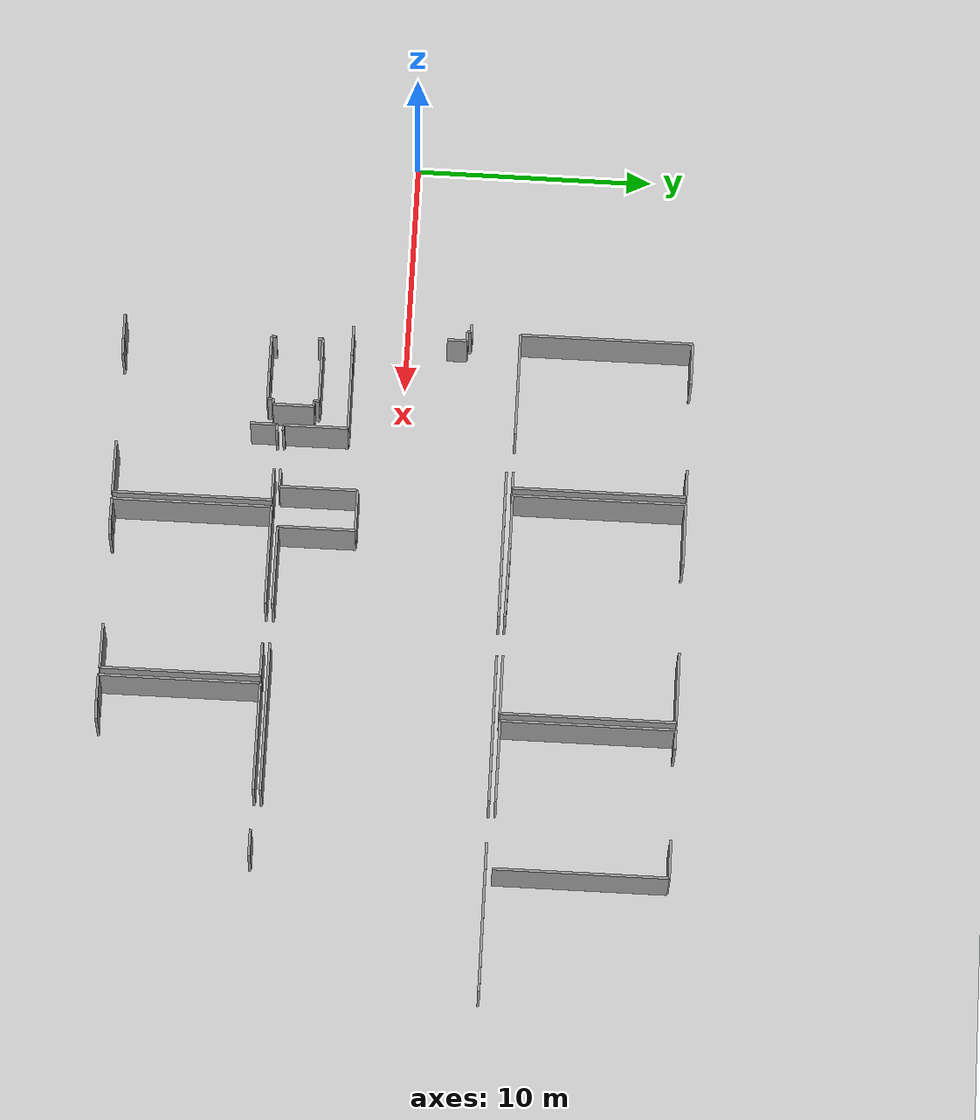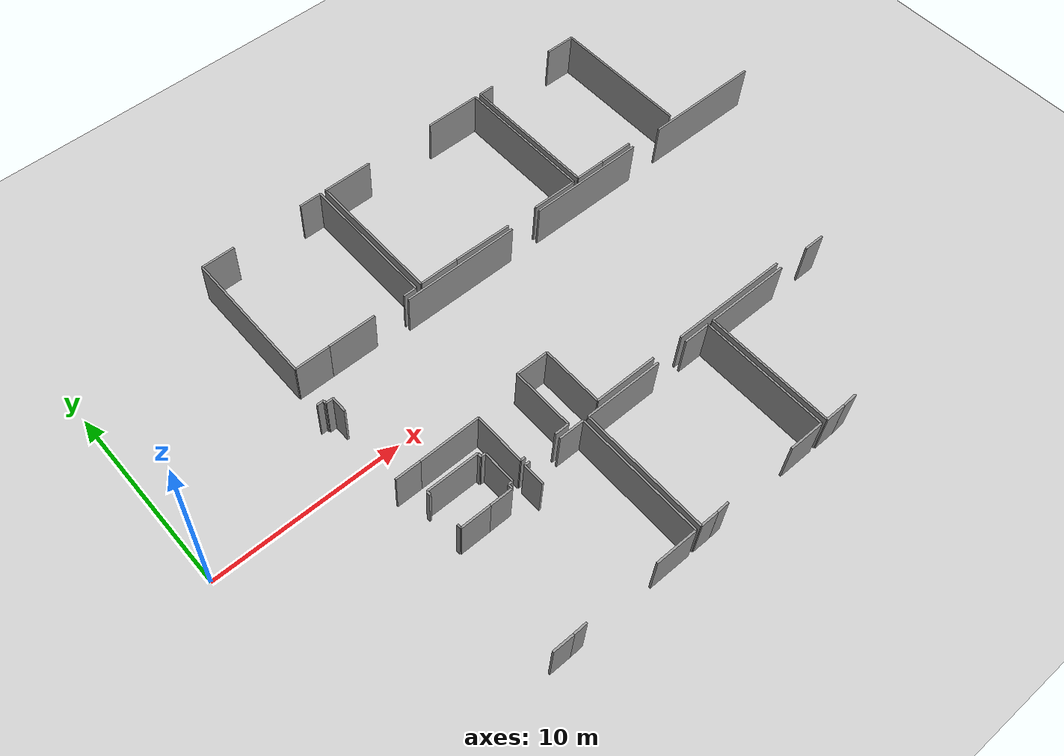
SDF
<sdf version="1.6">
 <world name="default">
  <model name="ground_plane">
   <static>1</static>
   <link name="link">
    <collision name="collision">
     <geometry><plane><normal>0 0 1</normal><size>100 100</size></plane></geometry>
     <surface><friction><ode><mu>100</mu><mu2>50</mu2></ode></friction></surface>
    </collision>
    <visual name="visual">
     <cast_shadows>0</cast_shadows>
     <geometry><plane><normal>0 0 1</normal><size>100 100</size></plane></geometry>
     <material>
      <script><uri>file://media/materials/scripts/gazebo.material</uri><name>Gazebo/Grey</name></script>
     </material>
    </visual>
   </link>
  </model>
  <model name="0510034690_Layout1">
   <static>1</static>
   <link name="Wall_187">
    <collision name="Wall_187_Collision">
     <geometry><box><size>1.58308535551 0.1 2.5</size></box></geometry>
     <pose>0.791542677755 0 1.25 0 0 0</pose>
    </collision>
    <visual name="Wall_187_Visual">
     <pose>0.791542677755 0 1.25 0 0 0</pose>
     <geometry><box><size>1.58308535551 0.1 2.5</size></box></geometry>
     <material>
      <script><uri>file://media/materials/scripts/gazebo.material</uri><name>Gazebo/Grey</name></script>
      <ambient>1 1 1 1</ambient>
     </material>
    </visual>
    <pose>66.4458427844 -18.4627361284 0 0 0 3.14159265359</pose>
   </link>
   <link name="Wall_188">
    <collision name="Wall_188_Collision">
     <geometry><box><size>0.218203579756 0.1 2.5</size></box></geometry>
     <pose>0.109101789878 0 1.25 0 0 0</pose>
    </collision>
    <visual name="Wall_188_Visual">
     <pose>0.109101789878 0 1.25 0 0 0</pose>
     <geometry><box><size>0.218203579756 0.1 2.5</size></box></geometry>
     <material>
      <script><uri>file://media/materials/scripts/gazebo.material</uri><name>Gazebo/Grey</name></script>
      <ambient>1 1 1 1</ambient>
     </material>
    </visual>
    <pose>64.8627574289 -18.4627361284 0 0 0 1.57079632679</pose>
   </link>
   <link name="Wall_189">
    <collision name="Wall_189_Collision">
     <geometry><box><size>0.210849827504 0.1 2.5</size></box></geometry>
     <pose>0.105424913752 0 1.25 0 0 0</pose>
    </collision>
    <visual name="Wall_189_Visual">
     <pose>0.105424913752 0 1.25 0 0 0</pose>
     <geometry><box><size>0.210849827504 0.1 2.5</size></box></geometry>
     <material>
      <script><uri>file://media/materials/scripts/gazebo.material</uri><name>Gazebo/Grey</name></script>
      <ambient>1 1 1 1</ambient>
     </material>
    </visual>
    <pose>64.8627574289 -16.5093005948 0 0 0 1.57079632679</pose>
   </link>
   <link name="Wall_190">
    <collision name="Wall_190_Collision">
     <geometry><box><size>2.76108039299 0.1 2.5</size></box></geometry>
     <pose>1.3805401965 0 1.25 0 0 0</pose>
    </collision>
    <visual name="Wall_190_Visual">
     <pose>1.3805401965 0 1.25 0 0 0</pose>
     <geometry><box><size>2.76108039299 0.1 2.5</size></box></geometry>
     <material>
      <script><uri>file://media/materials/scripts/gazebo.material</uri><name>Gazebo/Grey</name></script>
      <ambient>1 1 1 1</ambient>
     </material>
    </visual>
    <pose>64.8627574289 -16.2984507673 0 0 0 0.0</pose>
   </link>
   <link name="Wall_191">
    <collision name="Wall_191_Collision">
     <geometry><box><size>0.210849827504 0.1 2.5</size></box></geometry>
     <pose>0.105424913752 0 1.25 0 0 0</pose>
    </collision>
    <visual name="Wall_191_Visual">
     <pose>0.105424913752 0 1.25 0 0 0</pose>
     <geometry><box><size>0.210849827504 0.1 2.5</size></box></geometry>
     <material>
      <script><uri>file://media/materials/scripts/gazebo.material</uri><name>Gazebo/Grey</name></script>
      <ambient>1 1 1 1</ambient>
     </material>
    </visual>
    <pose>67.6238378219 -16.2984507673 0 0 0 -1.57079632679</pose>
   </link>
   <link name="Wall_192">
    <collision name="Wall_192_Collision">
     <geometry><box><size>0.249266843579 0.1 2.5</size></box></geometry>
     <pose>0.12463342179 0 1.25 0 0 0</pose>
    </collision>
    <visual name="Wall_192_Visual">
     <pose>0.12463342179 0 1.25 0 0 0</pose>
     <geometry><box><size>0.249266843579 0.1 2.5</size></box></geometry>
     <material>
      <script><uri>file://media/materials/scripts/gazebo.material</uri><name>Gazebo/Grey</name></script>
      <ambient>1 1 1 1</ambient>
     </material>
    </visual>
    <pose>67.6238378219 -16.5093005948 0 0 0 0.0</pose>
   </link>
   <link name="Wall_193">
    <collision name="Wall_193_Collision">
     <geometry><box><size>1.71608684021 0.1 2.5</size></box></geometry>
     <pose>0.858043420103 0 1.25 0 0 0</pose>
    </collision>
    <visual name="Wall_193_Visual">
     <pose>0.858043420103 0 1.25 0 0 0</pose>
     <geometry><box><size>1.71608684021 0.1 2.5</size></box></geometry>
     <material>
      <script><uri>file://media/materials/scripts/gazebo.material</uri><name>Gazebo/Grey</name></script>
      <ambient>1 1 1 1</ambient>
     </material>
    </visual>
    <pose>67.8731046654 -16.5093005948 0 0 0 -1.57079632679</pose>
   </link>
   <link name="Wall_194">
    <collision name="Wall_194_Collision">
     <geometry><box><size>0.229994941126 0.1 2.5</size></box></geometry>
     <pose>0.114997470563 0 1.25 0 0 0</pose>
    </collision>
    <visual name="Wall_194_Visual">
     <pose>0.114997470563 0 1.25 0 0 0</pose>
     <geometry><box><size>0.229994941126 0.1 2.5</size></box></geometry>
     <material>
      <script><uri>file://media/materials/scripts/gazebo.material</uri><name>Gazebo/Grey</name></script>
      <ambient>1 1 1 1</ambient>
     </material>
    </visual>
    <pose>67.8731046654 -18.225387435 0 0 0 3.14159265359</pose>
   </link>
   <link name="Wall_195">
    <collision name="Wall_195_Collision">
     <geometry><box><size>0.230121729958 0.1 2.5</size></box></geometry>
     <pose>0.115060864979 0 1.25 0 0 0</pose>
    </collision>
    <visual name="Wall_195_Visual">
     <pose>0.115060864979 0 1.25 0 0 0</pose>
     <geometry><box><size>0.230121729958 0.1 2.5</size></box></geometry>
     <material>
      <script><uri>file://media/materials/scripts/gazebo.material</uri><name>Gazebo/Grey</name></script>
      <ambient>1 1 1 1</ambient>
     </material>
    </visual>
    <pose>67.6431097243 -18.225387435 0 0 0 -1.57079632679</pose>
   </link>
   <link name="Wall_196">
    <collision name="Wall_196_Collision">
     <geometry><box><size>1.1972887515 0.1 2.5</size></box></geometry>
     <pose>0.598644375751 0 1.25 0 0 0</pose>
    </collision>
    <visual name="Wall_196_Visual">
     <pose>0.598644375751 0 1.25 0 0 0</pose>
     <geometry><box><size>1.1972887515 0.1 2.5</size></box></geometry>
     <material>
      <script><uri>file://media/materials/scripts/gazebo.material</uri><name>Gazebo/Grey</name></script>
      <ambient>1 1 1 1</ambient>
     </material>
    </visual>
    <pose>67.6431097243 -18.4555091649 0 0 0 -3.1355565096</pose>
   </link>
   <link name="Wall_197">
    <collision name="Wall_197_Collision">
     <geometry><box><size>1.32684512617 0.1 2.5</size></box></geometry>
     <pose>0.663422563087 0 1.25 0 0 0</pose>
    </collision>
    <visual name="Wall_197_Visual">
     <pose>0.663422563087 0 1.25 0 0 0</pose>
     <geometry><box><size>1.32684512617 0.1 2.5</size></box></geometry>
     <material>
      <script><uri>file://media/materials/scripts/gazebo.material</uri><name>Gazebo/Grey</name></script>
      <ambient>1 1 1 1</ambient>
     </material>
    </visual>
    <pose>65.527257697 -15.0362679454 0 0 0 3.14159265359</pose>
   </link>
   <link name="Wall_205">
    <collision name="Wall_205_Collision">
     <geometry><box><size>0.833256203461 0.1 2.5</size></box></geometry>
     <pose>0.41662810173 0 1.25 0 0 0</pose>
    </collision>
    <visual name="Wall_205_Visual">
     <pose>0.41662810173 0 1.25 0 0 0</pose>
     <geometry><box><size>0.833256203461 0.1 2.5</size></box></geometry>
     <material>
      <script><uri>file://media/materials/scripts/gazebo.material</uri><name>Gazebo/Grey</name></script>
      <ambient>1 1 1 1</ambient>
     </material>
    </visual>
    <pose>64.5943454717 -11.0831189546 0 0 0 1.57079632679</pose>
   </link>
   <link name="Wall_206">
    <collision name="Wall_206_Collision">
     <geometry><box><size>0.387973825714 0.1 2.5</size></box></geometry>
     <pose>0.193986912857 0 1.25 0 0 0</pose>
    </collision>
    <visual name="Wall_206_Visual">
     <pose>0.193986912857 0 1.25 0 0 0</pose>
     <geometry><box><size>0.387973825714 0.1 2.5</size></box></geometry>
     <material>
      <script><uri>file://media/materials/scripts/gazebo.material</uri><name>Gazebo/Grey</name></script>
      <ambient>1 1 1 1</ambient>
     </material>
    </visual>
    <pose>64.5943454717 -10.2498627511 0 0 0 3.14159265359</pose>
   </link>
   <link name="Wall_207">
    <collision name="Wall_207_Collision">
     <geometry><box><size>0.166727313991 0.1 2.5</size></box></geometry>
     <pose>0.0833636569956 0 1.25 0 0 0</pose>
    </collision>
    <visual name="Wall_207_Visual">
     <pose>0.0833636569956 0 1.25 0 0 0</pose>
     <geometry><box><size>0.166727313991 0.1 2.5</size></box></geometry>
     <material>
      <script><uri>file://media/materials/scripts/gazebo.material</uri><name>Gazebo/Grey</name></script>
      <ambient>1 1 1 1</ambient>
     </material>
    </visual>
    <pose>64.206371646 -10.2498627511 0 0 0 1.57079632679</pose>
   </link>
   <link name="Wall_208">
    <collision name="Wall_208_Collision">
     <geometry><box><size>0.358558816705 0.1 2.5</size></box></geometry>
     <pose>0.179279408353 0 1.25 0 0 0</pose>
    </collision>
    <visual name="Wall_208_Visual">
     <pose>0.179279408353 0 1.25 0 0 0</pose>
     <geometry><box><size>0.358558816705 0.1 2.5</size></box></geometry>
     <material>
      <script><uri>file://media/materials/scripts/gazebo.material</uri><name>Gazebo/Grey</name></script>
      <ambient>1 1 1 1</ambient>
     </material>
    </visual>
    <pose>64.206371646 -10.0831354371 0 0 0 3.14159265359</pose>
   </link>
   <link name="Wall_212">
    <collision name="Wall_212_Collision">
     <geometry><box><size>6.30622292266 0.1 2.5</size></box></geometry>
     <pose>3.15311146133 0 1.25 0 0 0</pose>
    </collision>
    <visual name="Wall_212_Visual">
     <pose>3.15311146133 0 1.25 0 0 0</pose>
     <geometry><box><size>6.30622292266 0.1 2.5</size></box></geometry>
     <material>
      <script><uri>file://media/materials/scripts/gazebo.material</uri><name>Gazebo/Grey</name></script>
      <ambient>1 1 1 1</ambient>
     </material>
    </visual>
    <pose>70.3466279876 -8.2999773048 0 0 0 0.0</pose>
   </link>
   <link name="Wall_213">
    <collision name="Wall_213_Collision">
     <geometry><box><size>6.2698345279 0.1 2.5</size></box></geometry>
     <pose>3.13491726395 0 1.25 0 0 0</pose>
    </collision>
    <visual name="Wall_213_Visual">
     <pose>3.13491726395 0 1.25 0 0 0</pose>
     <geometry><box><size>6.2698345279 0.1 2.5</size></box></geometry>
     <material>
      <script><uri>file://media/materials/scripts/gazebo.material</uri><name>Gazebo/Grey</name></script>
      <ambient>1 1 1 1</ambient>
     </material>
    </visual>
    <pose>78.3614572094 -8.2999773048 0 0 0 0.0</pose>
   </link>
   <link name="Wall_214">
    <collision name="Wall_214_Collision">
     <geometry><box><size>6.28910643035 0.1 2.5</size></box></geometry>
     <pose>3.14455321517 0 1.25 0 0 0</pose>
    </collision>
    <visual name="Wall_214_Visual">
     <pose>3.14455321517 0 1.25 0 0 0</pose>
     <geometry><box><size>6.28910643035 0.1 2.5</size></box></geometry>
     <material>
      <script><uri>file://media/materials/scripts/gazebo.material</uri><name>Gazebo/Grey</name></script>
      <ambient>1 1 1 1</ambient>
     </material>
    </visual>
    <pose>86.3857955936 -8.2999773048 0 0 0 0.0</pose>
   </link>
   <link name="Wall_224">
    <collision name="Wall_224_Collision">
     <geometry><box><size>6.32841096825 0.1 2.5</size></box></geometry>
     <pose>3.16420548412 0 1.25 0 0 0</pose>
    </collision>
    <visual name="Wall_224_Visual">
     <pose>3.16420548412 0 1.25 0 0 0</pose>
     <geometry><box><size>6.32841096825 0.1 2.5</size></box></geometry>
     <material>
      <script><uri>file://media/materials/scripts/gazebo.material</uri><name>Gazebo/Grey</name></script>
      <ambient>1 1 1 1</ambient>
     </material>
    </visual>
    <pose>84.6802322264 -17.6885635206 0 0 0 3.14159265359</pose>
   </link>
   <link name="Wall_225">
    <collision name="Wall_225_Collision">
     <geometry><box><size>3.39147446536 0.1 2.5</size></box></geometry>
     <pose>1.69573723268 0 1.25 0 0 0</pose>
    </collision>
    <visual name="Wall_225_Visual">
     <pose>1.69573723268 0 1.25 0 0 0</pose>
     <geometry><box><size>3.39147446536 0.1 2.5</size></box></geometry>
     <material>
      <script><uri>file://media/materials/scripts/gazebo.material</uri><name>Gazebo/Grey</name></script>
      <ambient>1 1 1 1</ambient>
     </material>
    </visual>
    <pose>76.6429613814 -17.6885635206 0 0 0 3.14159265359</pose>
   </link>
   <link name="Wall_226">
    <collision name="Wall_226_Collision">
     <geometry><box><size>3.23476346909 0.1 2.5</size></box></geometry>
     <pose>1.61738173455 0 1.25 0 0 0</pose>
    </collision>
    <visual name="Wall_226_Visual">
     <pose>1.61738173455 0 1.25 0 0 0</pose>
     <geometry><box><size>3.23476346909 0.1 2.5</size></box></geometry>
     <material>
      <script><uri>file://media/materials/scripts/gazebo.material</uri><name>Gazebo/Grey</name></script>
      <ambient>1 1 1 1</ambient>
     </material>
    </visual>
    <pose>73.251486916 -17.6885635206 0 0 0 1.57079632679</pose>
   </link>
   <link name="Wall_227">
    <collision name="Wall_227_Collision">
     <geometry><box><size>1.75729321058 0.1 2.5</size></box></geometry>
     <pose>0.878646605292 0 1.25 0 0 0</pose>
    </collision>
    <visual name="Wall_227_Visual">
     <pose>0.878646605292 0 1.25 0 0 0</pose>
     <geometry><box><size>1.75729321058 0.1 2.5</size></box></geometry>
     <material>
      <script><uri>file://media/materials/scripts/gazebo.material</uri><name>Gazebo/Grey</name></script>
      <ambient>1 1 1 1</ambient>
     </material>
    </visual>
    <pose>73.251486916 -14.4538000515 0 0 0 3.14159265359</pose>
   </link>
   <link name="Wall_228">
    <collision name="Wall_228_Collision">
     <geometry><box><size>3.26354453394 0.1 2.5</size></box></geometry>
     <pose>1.63177226697 0 1.25 0 0 0</pose>
    </collision>
    <visual name="Wall_228_Visual">
     <pose>1.63177226697 0 1.25 0 0 0</pose>
     <geometry><box><size>3.26354453394 0.1 2.5</size></box></geometry>
     <material>
      <script><uri>file://media/materials/scripts/gazebo.material</uri><name>Gazebo/Grey</name></script>
      <ambient>1 1 1 1</ambient>
     </material>
    </visual>
    <pose>71.4941937054 -14.4538000515 0 0 0 -1.57079632679</pose>
   </link>
   <link name="Wall_229">
    <collision name="Wall_229_Collision">
     <geometry><box><size>0.760732991595 0.1 2.5</size></box></geometry>
     <pose>0.380366495798 0 1.25 0 0 0</pose>
    </collision>
    <visual name="Wall_229_Visual">
     <pose>0.380366495798 0 1.25 0 0 0</pose>
     <geometry><box><size>0.760732991595 0.1 2.5</size></box></geometry>
     <material>
      <script><uri>file://media/materials/scripts/gazebo.material</uri><name>Gazebo/Grey</name></script>
      <ambient>1 1 1 1</ambient>
     </material>
    </visual>
    <pose>71.4941937054 -17.7173445854 0 0 0 3.14159265359</pose>
   </link>
   <link name="Wall_230">
    <collision name="Wall_230_Collision">
     <geometry><box><size>0.242547035487 0.1 2.5</size></box></geometry>
     <pose>0.121273517743 0 1.25 0 0 0</pose>
    </collision>
    <visual name="Wall_230_Visual">
     <pose>0.121273517743 0 1.25 0 0 0</pose>
     <geometry><box><size>0.242547035487 0.1 2.5</size></box></geometry>
     <material>
      <script><uri>file://media/materials/scripts/gazebo.material</uri><name>Gazebo/Grey</name></script>
      <ambient>1 1 1 1</ambient>
     </material>
    </visual>
    <pose>69.0135702087 -17.7173445854 0 0 0 3.14159265359</pose>
   </link>
   <link name="Wall_231">
    <collision name="Wall_231_Collision">
     <geometry><box><size>2.70123606432 0.1 2.5</size></box></geometry>
     <pose>1.35061803216 0 1.25 0 0 0</pose>
    </collision>
    <visual name="Wall_231_Visual">
     <pose>1.35061803216 0 1.25 0 0 0</pose>
     <geometry><box><size>2.70123606432 0.1 2.5</size></box></geometry>
     <material>
      <script><uri>file://media/materials/scripts/gazebo.material</uri><name>Gazebo/Grey</name></script>
      <ambient>1 1 1 1</ambient>
     </material>
    </visual>
    <pose>68.7710231732 -17.7173445854 0 0 0 1.57079632679</pose>
   </link>
   <link name="Wall_232">
    <collision name="Wall_232_Collision">
     <geometry><box><size>3.24382811917 0.1 2.5</size></box></geometry>
     <pose>1.62191405959 0 1.25 0 0 0</pose>
    </collision>
    <visual name="Wall_232_Visual">
     <pose>1.62191405959 0 1.25 0 0 0</pose>
     <geometry><box><size>3.24382811917 0.1 2.5</size></box></geometry>
     <material>
      <script><uri>file://media/materials/scripts/gazebo.material</uri><name>Gazebo/Grey</name></script>
      <ambient>1 1 1 1</ambient>
     </material>
    </visual>
    <pose>68.7710231732 -15.0161085211 0 0 0 -3.13537791184</pose>
   </link>
   <link name="Wall_233">
    <collision name="Wall_233_Collision">
     <geometry><box><size>1.10306283781 0.1 2.5</size></box></geometry>
     <pose>0.551531418906 0 1.25 0 0 0</pose>
    </collision>
    <visual name="Wall_233_Visual">
     <pose>0.551531418906 0 1.25 0 0 0</pose>
     <geometry><box><size>1.10306283781 0.1 2.5</size></box></geometry>
     <material>
      <script><uri>file://media/materials/scripts/gazebo.material</uri><name>Gazebo/Grey</name></script>
      <ambient>1 1 1 1</ambient>
     </material>
    </visual>
    <pose>65.3085469619 -24.6785586138 0 0 0 3.14159265359</pose>
   </link>
   <link name="Wall_236">
    <collision name="Wall_236_Collision">
     <geometry><box><size>1.11574172101 0.1 2.5</size></box></geometry>
     <pose>0.557870860503 0 1.25 0 0 0</pose>
    </collision>
    <visual name="Wall_236_Visual">
     <pose>0.557870860503 0 1.25 0 0 0</pose>
     <geometry><box><size>1.11574172101 0.1 2.5</size></box></geometry>
     <material>
      <script><uri>file://media/materials/scripts/gazebo.material</uri><name>Gazebo/Grey</name></script>
      <ambient>1 1 1 1</ambient>
     </material>
    </visual>
    <pose>68.7572031905 -19.112528892 0 0 0 1.57079632679</pose>
   </link>
   <link name="Wall_237">
    <collision name="Wall_237_Collision">
     <geometry><box><size>0.278935430252 0.1 2.5</size></box></geometry>
     <pose>0.139467715126 0 1.25 0 0 0</pose>
    </collision>
    <visual name="Wall_237_Visual">
     <pose>0.139467715126 0 1.25 0 0 0</pose>
     <geometry><box><size>0.278935430252 0.1 2.5</size></box></geometry>
     <material>
      <script><uri>file://media/materials/scripts/gazebo.material</uri><name>Gazebo/Grey</name></script>
      <ambient>1 1 1 1</ambient>
     </material>
    </visual>
    <pose>68.7572031905 -17.996787171 0 0 0 0.0</pose>
   </link>
   <link name="Wall_238">
    <collision name="Wall_238_Collision">
     <geometry><box><size>1.37058727319 0.1 2.5</size></box></geometry>
     <pose>0.685293636595 0 1.25 0 0 0</pose>
    </collision>
    <visual name="Wall_238_Visual">
     <pose>0.685293636595 0 1.25 0 0 0</pose>
     <geometry><box><size>1.37058727319 0.1 2.5</size></box></geometry>
     <material>
      <script><uri>file://media/materials/scripts/gazebo.material</uri><name>Gazebo/Grey</name></script>
      <ambient>1 1 1 1</ambient>
     </material>
    </visual>
    <pose>70.732573192 -17.996787171 0 0 0 0.0</pose>
   </link>
   <link name="Wall_239">
    <collision name="Wall_239_Collision">
     <geometry><box><size>6.66275311805 0.1 2.5</size></box></geometry>
     <pose>3.33137655903 0 1.25 0 0 0</pose>
    </collision>
    <visual name="Wall_239_Visual">
     <pose>3.33137655903 0 1.25 0 0 0</pose>
     <geometry><box><size>6.66275311805 0.1 2.5</size></box></geometry>
     <material>
      <script><uri>file://media/materials/scripts/gazebo.material</uri><name>Gazebo/Grey</name></script>
      <ambient>1 1 1 1</ambient>
     </material>
    </visual>
    <pose>72.1031604652 -17.996787171 0 0 0 -1.57079632679</pose>
   </link>
   <link name="Wall_240">
    <collision name="Wall_240_Collision">
     <geometry><box><size>2.24543021353 0.1 2.5</size></box></geometry>
     <pose>1.12271510676 0 1.25 0 0 0</pose>
    </collision>
    <visual name="Wall_240_Visual">
     <pose>1.12271510676 0 1.25 0 0 0</pose>
     <geometry><box><size>2.24543021353 0.1 2.5</size></box></geometry>
     <material>
      <script><uri>file://media/materials/scripts/gazebo.material</uri><name>Gazebo/Grey</name></script>
      <ambient>1 1 1 1</ambient>
     </material>
    </visual>
    <pose>72.1031604652 -24.6595402891 0 0 0 3.14159265359</pose>
   </link>
   <link name="Wall_241">
    <collision name="Wall_241_Collision">
     <geometry><box><size>0.698738544256 0.1 2.5</size></box></geometry>
     <pose>0.349369272128 0 1.25 0 0 0</pose>
    </collision>
    <visual name="Wall_241_Visual">
     <pose>0.349369272128 0 1.25 0 0 0</pose>
     <geometry><box><size>0.698738544256 0.1 2.5</size></box></geometry>
     <material>
      <script><uri>file://media/materials/scripts/gazebo.material</uri><name>Gazebo/Grey</name></script>
      <ambient>1 1 1 1</ambient>
     </material>
    </visual>
    <pose>66.0070266371 -24.6595402891 0 0 0 -3.11437120726</pose>
   </link>
   <link name="Wall_242">
    <collision name="Wall_242_Collision">
     <geometry><box><size>0.959284302402 0.1 2.5</size></box></geometry>
     <pose>0.479642151201 0 1.25 0 0 0</pose>
    </collision>
    <visual name="Wall_242_Visual">
     <pose>0.479642151201 0 1.25 0 0 0</pose>
     <geometry><box><size>0.959284302402 0.1 2.5</size></box></geometry>
     <material>
      <script><uri>file://media/materials/scripts/gazebo.material</uri><name>Gazebo/Grey</name></script>
      <ambient>1 1 1 1</ambient>
     </material>
    </visual>
    <pose>73.3574823795 -24.6630903763 0 0 0 3.14159265359</pose>
   </link>
   <link name="Wall_243">
    <collision name="Wall_243_Collision">
     <geometry><box><size>6.66782467133 0.1 2.5</size></box></geometry>
     <pose>3.33391233567 0 1.25 0 0 0</pose>
    </collision>
    <visual name="Wall_243_Visual">
     <pose>3.33391233567 0 1.25 0 0 0</pose>
     <geometry><box><size>6.66782467133 0.1 2.5</size></box></geometry>
     <material>
      <script><uri>file://media/materials/scripts/gazebo.material</uri><name>Gazebo/Grey</name></script>
      <ambient>1 1 1 1</ambient>
     </material>
    </visual>
    <pose>72.3981980771 -24.6630903763 0 0 0 1.57079632679</pose>
   </link>
   <link name="Wall_244">
    <collision name="Wall_244_Collision">
     <geometry><box><size>4.23753634085 0.1 2.5</size></box></geometry>
     <pose>2.11876817042 0 1.25 0 0 0</pose>
    </collision>
    <visual name="Wall_244_Visual">
     <pose>2.11876817042 0 1.25 0 0 0</pose>
     <geometry><box><size>4.23753634085 0.1 2.5</size></box></geometry>
     <material>
      <script><uri>file://media/materials/scripts/gazebo.material</uri><name>Gazebo/Grey</name></script>
      <ambient>1 1 1 1</ambient>
     </material>
    </visual>
    <pose>72.3981980771 -17.995265705 0 0 0 0.0</pose>
   </link>
   <link name="Wall_245">
    <collision name="Wall_245_Collision">
     <geometry><box><size>1.43322095617 0.1 2.5</size></box></geometry>
     <pose>0.716610478083 0 1.25 0 0 0</pose>
    </collision>
    <visual name="Wall_245_Visual">
     <pose>0.716610478083 0 1.25 0 0 0</pose>
     <geometry><box><size>1.43322095617 0.1 2.5</size></box></geometry>
     <material>
      <script><uri>file://media/materials/scripts/gazebo.material</uri><name>Gazebo/Grey</name></script>
      <ambient>1 1 1 1</ambient>
     </material>
    </visual>
    <pose>78.3518212582 -17.995265705 0 0 0 0.0</pose>
   </link>
   <link name="Wall_246">
    <collision name="Wall_246_Collision">
     <geometry><box><size>6.64170617195 0.1 2.5</size></box></geometry>
     <pose>3.32085308598 0 1.25 0 0 0</pose>
    </collision>
    <visual name="Wall_246_Visual">
     <pose>3.32085308598 0 1.25 0 0 0</pose>
     <geometry><box><size>6.64170617195 0.1 2.5</size></box></geometry>
     <material>
      <script><uri>file://media/materials/scripts/gazebo.material</uri><name>Gazebo/Grey</name></script>
      <ambient>1 1 1 1</ambient>
     </material>
    </visual>
    <pose>79.7850422143 -17.995265705 0 0 0 -1.57079632679</pose>
   </link>
   <link name="Wall_247">
    <collision name="Wall_247_Collision">
     <geometry><box><size>1.89840918053 0.1 2.5</size></box></geometry>
     <pose>0.949204590263 0 1.25 0 0 0</pose>
    </collision>
    <visual name="Wall_247_Visual">
     <pose>0.949204590263 0 1.25 0 0 0</pose>
     <geometry><box><size>1.89840918053 0.1 2.5</size></box></geometry>
     <material>
      <script><uri>file://media/materials/scripts/gazebo.material</uri><name>Gazebo/Grey</name></script>
      <ambient>1 1 1 1</ambient>
     </material>
    </visual>
    <pose>79.7850422143 -24.636971877 0 0 0 3.14159265359</pose>
   </link>
   <link name="Wall_248">
    <collision name="Wall_248_Collision">
     <geometry><box><size>0.653104583269 0.1 2.5</size></box></geometry>
     <pose>0.326552291634 0 1.25 0 0 0</pose>
    </collision>
    <visual name="Wall_248_Visual">
     <pose>0.326552291634 0 1.25 0 0 0</pose>
     <geometry><box><size>0.653104583269 0.1 2.5</size></box></geometry>
     <material>
      <script><uri>file://media/materials/scripts/gazebo.material</uri><name>Gazebo/Grey</name></script>
      <ambient>1 1 1 1</ambient>
     </material>
    </visual>
    <pose>74.0100644975 -24.636971877 0 0 0 -3.10159068918</pose>
   </link>
   <link name="Wall_249">
    <collision name="Wall_249_Collision">
     <geometry><box><size>1.11358631086 0.1 2.5</size></box></geometry>
     <pose>0.556793155432 0 1.25 0 0 0</pose>
    </collision>
    <visual name="Wall_249_Visual">
     <pose>0.556793155432 0 1.25 0 0 0</pose>
     <geometry><box><size>1.11358631086 0.1 2.5</size></box></geometry>
     <material>
      <script><uri>file://media/materials/scripts/gazebo.material</uri><name>Gazebo/Grey</name></script>
      <ambient>1 1 1 1</ambient>
     </material>
    </visual>
    <pose>81.2183899593 -24.6741210047 0 0 0 3.14159265359</pose>
   </link>
   <link name="Wall_250">
    <collision name="Wall_250_Collision">
     <geometry><box><size>6.69216812706 0.1 2.5</size></box></geometry>
     <pose>3.34608406353 0 1.25 0 0 0</pose>
    </collision>
    <visual name="Wall_250_Visual">
     <pose>3.34608406353 0 1.25 0 0 0</pose>
     <geometry><box><size>6.69216812706 0.1 2.5</size></box></geometry>
     <material>
      <script><uri>file://media/materials/scripts/gazebo.material</uri><name>Gazebo/Grey</name></script>
      <ambient>1 1 1 1</ambient>
     </material>
    </visual>
    <pose>80.1048036485 -24.6741210047 0 0 0 1.57079632679</pose>
   </link>
   <link name="Wall_251">
    <collision name="Wall_251_Collision">
     <geometry><box><size>4.56439794957 0.1 2.5</size></box></geometry>
     <pose>2.28219897479 0 1.25 0 0 0</pose>
    </collision>
    <visual name="Wall_251_Visual">
     <pose>2.28219897479 0 1.25 0 0 0</pose>
     <geometry><box><size>4.56439794957 0.1 2.5</size></box></geometry>
     <material>
      <script><uri>file://media/materials/scripts/gazebo.material</uri><name>Gazebo/Grey</name></script>
      <ambient>1 1 1 1</ambient>
     </material>
    </visual>
    <pose>80.1048036485 -17.9819528777 0 0 0 0.0</pose>
   </link>
   <link name="Wall_252">
    <collision name="Wall_252_Collision">
     <geometry><box><size>1.12461693924 0.1 2.5</size></box></geometry>
     <pose>0.562308469621 0 1.25 0 0 0</pose>
    </collision>
    <visual name="Wall_252_Visual">
     <pose>0.562308469621 0 1.25 0 0 0</pose>
     <geometry><box><size>1.12461693924 0.1 2.5</size></box></geometry>
     <material>
      <script><uri>file://media/materials/scripts/gazebo.material</uri><name>Gazebo/Grey</name></script>
      <ambient>1 1 1 1</ambient>
     </material>
    </visual>
    <pose>86.3670308465 -17.9819528777 0 0 0 0.0</pose>
   </link>
   <link name="Wall_255">
    <collision name="Wall_255_Collision">
     <geometry><box><size>0.780073169897 0.1 2.5</size></box></geometry>
     <pose>0.390036584948 0 1.25 0 0 0</pose>
    </collision>
    <visual name="Wall_255_Visual">
     <pose>0.390036584948 0 1.25 0 0 0</pose>
     <geometry><box><size>0.780073169897 0.1 2.5</size></box></geometry>
     <material>
      <script><uri>file://media/materials/scripts/gazebo.material</uri><name>Gazebo/Grey</name></script>
      <ambient>1 1 1 1</ambient>
     </material>
    </visual>
    <pose>81.9977609092 -24.6410291196 0 0 0 -3.09915840545</pose>
   </link>
   <link name="Wall_309">
    <collision name="Wall_309_Collision">
     <geometry><box><size>1.61097889853 0.1 2.5</size></box></geometry>
     <pose>0.805489449267 0 1.25 0 0 0</pose>
    </collision>
    <visual name="Wall_309_Visual">
     <pose>0.805489449267 0 1.25 0 0 0</pose>
     <geometry><box><size>1.61097889853 0.1 2.5</size></box></geometry>
     <material>
      <script><uri>file://media/materials/scripts/gazebo.material</uri><name>Gazebo/Grey</name></script>
      <ambient>1 1 1 1</ambient>
     </material>
    </visual>
    <pose>82.7800480023 -8.01850609791 0 0 0 3.14159265359</pose>
   </link>
   <link name="Wall_310">
    <collision name="Wall_310_Collision">
     <geometry><box><size>7.24344596831 0.1 2.5</size></box></geometry>
     <pose>3.62172298415 0 1.25 0 0 0</pose>
    </collision>
    <visual name="Wall_310_Visual">
     <pose>3.62172298415 0 1.25 0 0 0</pose>
     <geometry><box><size>7.24344596831 0.1 2.5</size></box></geometry>
     <material>
      <script><uri>file://media/materials/scripts/gazebo.material</uri><name>Gazebo/Grey</name></script>
      <ambient>1 1 1 1</ambient>
     </material>
    </visual>
    <pose>81.1690691037 -8.01850609791 0 0 0 1.57079632679</pose>
   </link>
   <link name="Wall_311">
    <collision name="Wall_311_Collision">
     <geometry><box><size>0.833636569956 0.1 2.5</size></box></geometry>
     <pose>0.416818284978 0 1.25 0 0 0</pose>
    </collision>
    <visual name="Wall_311_Visual">
     <pose>0.416818284978 0 1.25 0 0 0</pose>
     <geometry><box><size>0.833636569956 0.1 2.5</size></box></geometry>
     <material>
      <script><uri>file://media/materials/scripts/gazebo.material</uri><name>Gazebo/Grey</name></script>
      <ambient>1 1 1 1</ambient>
     </material>
    </visual>
    <pose>81.1690691037 -0.775060129604 0 0 0 0.0</pose>
   </link>
   <link name="Wall_312">
    <collision name="Wall_312_Collision">
     <geometry><box><size>1.63113832281 0.1 2.5</size></box></geometry>
     <pose>0.815569161406 0 1.25 0 0 0</pose>
    </collision>
    <visual name="Wall_312_Visual">
     <pose>0.815569161406 0 1.25 0 0 0</pose>
     <geometry><box><size>1.63113832281 0.1 2.5</size></box></geometry>
     <material>
      <script><uri>file://media/materials/scripts/gazebo.material</uri><name>Gazebo/Grey</name></script>
      <ambient>1 1 1 1</ambient>
     </material>
    </visual>
    <pose>85.8592415746 -0.775060129604 0 0 0 0.0</pose>
   </link>
   <link name="Wall_313">
    <collision name="Wall_313_Collision">
     <geometry><box><size>7.24927825457 0.1 2.5</size></box></geometry>
     <pose>3.62463912729 0 1.25 0 0 0</pose>
    </collision>
    <visual name="Wall_313_Visual">
     <pose>3.62463912729 0 1.25 0 0 0</pose>
     <geometry><box><size>7.24927825457 0.1 2.5</size></box></geometry>
     <material>
      <script><uri>file://media/materials/scripts/gazebo.material</uri><name>Gazebo/Grey</name></script>
      <ambient>1 1 1 1</ambient>
     </material>
    </visual>
    <pose>87.4903798974 -0.775060129604 0 0 0 -1.57079632679</pose>
   </link>
   <link name="Wall_315">
    <collision name="Wall_315_Collision">
     <geometry><box><size>1.84973146382 0.1 2.5</size></box></geometry>
     <pose>0.924865731908 0 1.25 0 0 0</pose>
    </collision>
    <visual name="Wall_315_Visual">
     <pose>0.924865731908 0 1.25 0 0 0</pose>
     <geometry><box><size>1.84973146382 0.1 2.5</size></box></geometry>
     <material>
      <script><uri>file://media/materials/scripts/gazebo.material</uri><name>Gazebo/Grey</name></script>
      <ambient>1 1 1 1</ambient>
     </material>
    </visual>
    <pose>84.6297702713 -8.02433838418 0 0 0 3.13843960351</pose>
   </link>
   <link name="Wall_316">
    <collision name="Wall_316_Collision">
     <geometry><box><size>2.12295220188 0.1 2.5</size></box></geometry>
     <pose>1.06147610094 0 1.25 0 0 0</pose>
    </collision>
    <visual name="Wall_316_Visual">
     <pose>1.06147610094 0 1.25 0 0 0</pose>
     <geometry><box><size>2.12295220188 0.1 2.5</size></box></geometry>
     <material>
      <script><uri>file://media/materials/scripts/gazebo.material</uri><name>Gazebo/Grey</name></script>
      <ambient>1 1 1 1</ambient>
     </material>
    </visual>
    <pose>73.4737477384 -7.99378227568 0 0 0 3.14159265359</pose>
   </link>
   <link name="Wall_317">
    <collision name="Wall_317_Collision">
     <geometry><box><size>7.22265259987 0.1 2.5</size></box></geometry>
     <pose>3.61132629993 0 1.25 0 0 0</pose>
    </collision>
    <visual name="Wall_317_Visual">
     <pose>3.61132629993 0 1.25 0 0 0</pose>
     <geometry><box><size>7.22265259987 0.1 2.5</size></box></geometry>
     <material>
      <script><uri>file://media/materials/scripts/gazebo.material</uri><name>Gazebo/Grey</name></script>
      <ambient>1 1 1 1</ambient>
     </material>
    </visual>
    <pose>71.3507955365 -7.99378227568 0 0 0 1.57079632679</pose>
   </link>
   <link name="Wall_318">
    <collision name="Wall_318_Collision">
     <geometry><box><size>2.64265962397 0.1 2.5</size></box></geometry>
     <pose>1.32132981198 0 1.25 0 0 0</pose>
    </collision>
    <visual name="Wall_318_Visual">
     <pose>1.32132981198 0 1.25 0 0 0</pose>
     <geometry><box><size>2.64265962397 0.1 2.5</size></box></geometry>
     <material>
      <script><uri>file://media/materials/scripts/gazebo.material</uri><name>Gazebo/Grey</name></script>
      <ambient>1 1 1 1</ambient>
     </material>
    </visual>
    <pose>71.3507955365 -0.771129675814 0 0 0 0.0</pose>
   </link>
   <link name="Wall_319">
    <collision name="Wall_319_Collision">
     <geometry><box><size>3.00679714928 0.1 2.5</size></box></geometry>
     <pose>1.50339857464 0 1.25 0 0 0</pose>
    </collision>
    <visual name="Wall_319_Visual">
     <pose>1.50339857464 0 1.25 0 0 0</pose>
     <geometry><box><size>3.00679714928 0.1 2.5</size></box></geometry>
     <material>
      <script><uri>file://media/materials/scripts/gazebo.material</uri><name>Gazebo/Grey</name></script>
      <ambient>1 1 1 1</ambient>
     </material>
    </visual>
    <pose>77.8464409741 -0.771129675814 0 0 0 0.0</pose>
   </link>
   <link name="Wall_320">
    <collision name="Wall_320_Collision">
     <geometry><box><size>7.27273418848 0.1 2.5</size></box></geometry>
     <pose>3.63636709424 0 1.25 0 0 0</pose>
    </collision>
    <visual name="Wall_320_Visual">
     <pose>3.63636709424 0 1.25 0 0 0</pose>
     <geometry><box><size>7.27273418848 0.1 2.5</size></box></geometry>
     <material>
      <script><uri>file://media/materials/scripts/gazebo.material</uri><name>Gazebo/Grey</name></script>
      <ambient>1 1 1 1</ambient>
     </material>
    </visual>
    <pose>80.8532381234 -0.771129675814 0 0 0 -1.57079632679</pose>
   </link>
   <link name="Wall_321">
    <collision name="Wall_321_Collision">
     <geometry><box><size>2.49812035557 0.1 2.5</size></box></geometry>
     <pose>1.24906017778 0 1.25 0 0 0</pose>
    </collision>
    <visual name="Wall_321_Visual">
     <pose>1.24906017778 0 1.25 0 0 0</pose>
     <geometry><box><size>2.49812035557 0.1 2.5</size></box></geometry>
     <material>
      <script><uri>file://media/materials/scripts/gazebo.material</uri><name>Gazebo/Grey</name></script>
      <ambient>1 1 1 1</ambient>
     </material>
    </visual>
    <pose>80.8532381234 -8.0438638643 0 0 0 3.14159265359</pose>
   </link>
   <link name="Wall_322">
    <collision name="Wall_322_Collision">
     <geometry><box><size>3.16745418526 0.1 2.5</size></box></geometry>
     <pose>1.58372709263 0 1.25 0 0 0</pose>
    </collision>
    <visual name="Wall_322_Visual">
     <pose>1.58372709263 0 1.25 0 0 0</pose>
     <geometry><box><size>3.16745418526 0.1 2.5</size></box></geometry>
     <material>
      <script><uri>file://media/materials/scripts/gazebo.material</uri><name>Gazebo/Grey</name></script>
      <ambient>1 1 1 1</ambient>
     </material>
    </visual>
    <pose>76.6408059712 -8.0438638643 0 0 0 3.12578068832</pose>
   </link>
   <link name="Wall_323">
    <collision name="Wall_323_Collision">
     <geometry><box><size>1.85149731271 0.1 2.5</size></box></geometry>
     <pose>0.925748656355 0 1.25 0 0 0</pose>
    </collision>
    <visual name="Wall_323_Visual">
     <pose>0.925748656355 0 1.25 0 0 0</pose>
     <geometry><box><size>1.85149731271 0.1 2.5</size></box></geometry>
     <material>
      <script><uri>file://media/materials/scripts/gazebo.material</uri><name>Gazebo/Grey</name></script>
      <ambient>1 1 1 1</ambient>
     </material>
    </visual>
    <pose>66.0697871089 -8.01520958828 0 0 0 3.14159265359</pose>
   </link>
   <link name="Wall_324">
    <collision name="Wall_324_Collision">
     <geometry><box><size>7.24306560181 0.1 2.5</size></box></geometry>
     <pose>3.6215328009 0 1.25 0 0 0</pose>
    </collision>
    <visual name="Wall_324_Visual">
     <pose>3.6215328009 0 1.25 0 0 0</pose>
     <geometry><box><size>7.24306560181 0.1 2.5</size></box></geometry>
     <material>
      <script><uri>file://media/materials/scripts/gazebo.material</uri><name>Gazebo/Grey</name></script>
      <ambient>1 1 1 1</ambient>
     </material>
    </visual>
    <pose>64.2182897962 -8.01520958828 0 0 0 1.57079632679</pose>
   </link>
   <link name="Wall_325">
    <collision name="Wall_325_Collision">
     <geometry><box><size>1.77922767851 0.1 2.5</size></box></geometry>
     <pose>0.889613839255 0 1.25 0 0 0</pose>
    </collision>
    <visual name="Wall_325_Visual">
     <pose>0.889613839255 0 1.25 0 0 0</pose>
     <geometry><box><size>1.77922767851 0.1 2.5</size></box></geometry>
     <material>
      <script><uri>file://media/materials/scripts/gazebo.material</uri><name>Gazebo/Grey</name></script>
      <ambient>1 1 1 1</ambient>
     </material>
    </visual>
    <pose>64.2182897962 -0.772143986469 0 0 0 0.0</pose>
   </link>
   <link name="Wall_326">
    <collision name="Wall_326_Collision">
     <geometry><box><size>1.19359006381 0.1 2.5</size></box></geometry>
     <pose>0.596795031906 0 1.25 0 0 0</pose>
    </collision>
    <visual name="Wall_326_Visual">
     <pose>0.596795031906 0 1.25 0 0 0</pose>
     <geometry><box><size>1.19359006381 0.1 2.5</size></box></geometry>
     <material>
      <script><uri>file://media/materials/scripts/gazebo.material</uri><name>Gazebo/Grey</name></script>
      <ambient>1 1 1 1</ambient>
     </material>
    </visual>
    <pose>69.8312313858 -0.772143986469 0 0 0 0.0</pose>
   </link>
   <link name="Wall_327">
    <collision name="Wall_327_Collision">
     <geometry><box><size>7.24610853378 0.1 2.5</size></box></geometry>
     <pose>3.62305426689 0 1.25 0 0 0</pose>
    </collision>
    <visual name="Wall_327_Visual">
     <pose>3.62305426689 0 1.25 0 0 0</pose>
     <geometry><box><size>7.24610853378 0.1 2.5</size></box></geometry>
     <material>
      <script><uri>file://media/materials/scripts/gazebo.material</uri><name>Gazebo/Grey</name></script>
      <ambient>1 1 1 1</ambient>
     </material>
    </visual>
    <pose>71.0248214496 -0.772143986469 0 0 0 -1.57079632679</pose>
   </link>
   <link name="Wall_328">
    <collision name="Wall_328_Collision">
     <geometry><box><size>0.701269029419 0.1 2.5</size></box></geometry>
     <pose>0.350634514709 0 1.25 0 0 0</pose>
    </collision>
    <visual name="Wall_328_Visual">
     <pose>0.350634514709 0 1.25 0 0 0</pose>
     <geometry><box><size>0.701269029419 0.1 2.5</size></box></geometry>
     <material>
      <script><uri>file://media/materials/scripts/gazebo.material</uri><name>Gazebo/Grey</name></script>
      <ambient>1 1 1 1</ambient>
     </material>
    </visual>
    <pose>71.0248214496 -8.01825252025 0 0 0 3.14159265359</pose>
   </link>
   <link name="Wall_329">
    <collision name="Wall_329_Collision">
     <geometry><box><size>2.56265767763 0.1 2.5</size></box></geometry>
     <pose>1.28132883881 0 1.25 0 0 0</pose>
    </collision>
    <visual name="Wall_329_Visual">
     <pose>1.28132883881 0 1.25 0 0 0</pose>
     <geometry><box><size>2.56265767763 0.1 2.5</size></box></geometry>
     <material>
      <script><uri>file://media/materials/scripts/gazebo.material</uri><name>Gazebo/Grey</name></script>
      <ambient>1 1 1 1</ambient>
     </material>
    </visual>
    <pose>68.6324429799 -8.01825252025 0 0 0 3.14040524073</pose>
   </link>
   <pose>-56.1 12.7807063533 0 0 0 0</pose>
  </model>
 </world>
</sdf>
